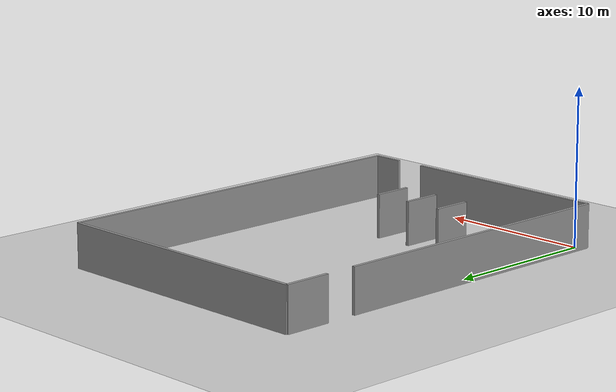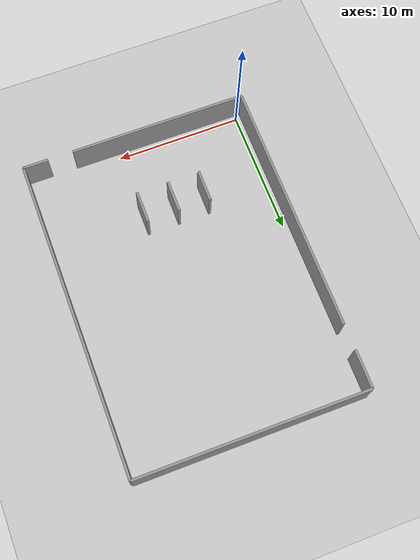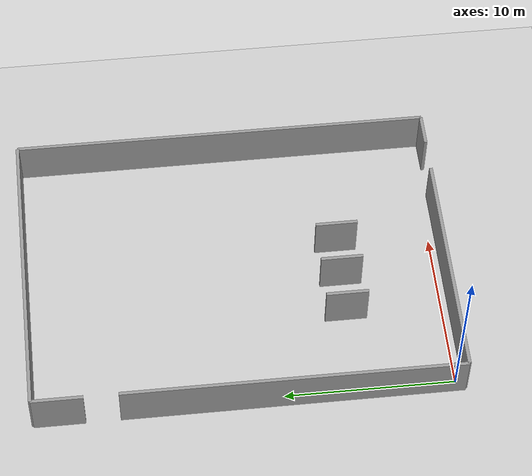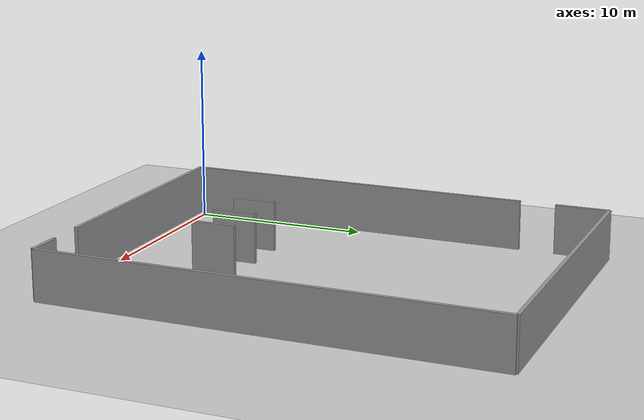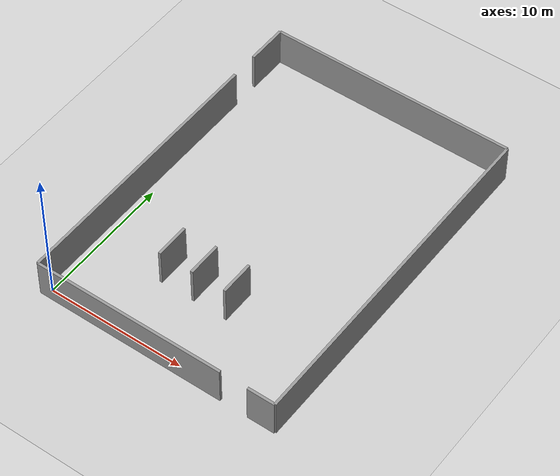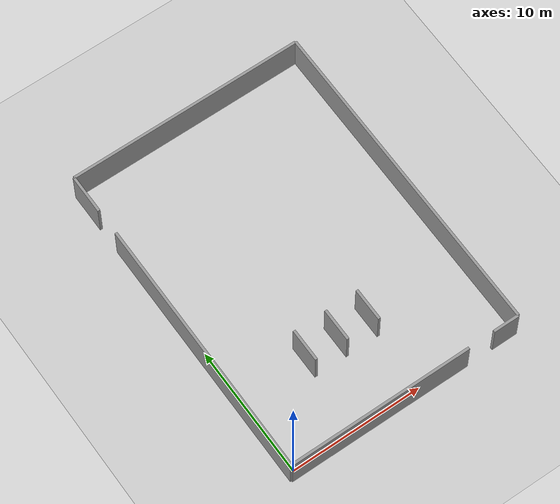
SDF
<?xml version="1.0" ?>

    <!-- this file is auto generated using pedsim_gazebo_plugin pkg -->
    <sdf version="1.5">
      <world name="default">

      <!-- Ground Plane -->

      <include>
        <uri>model://ground_plane</uri>
      </include>

      <include>
        <uri>model://sun</uri>
      </include>

     <model name='grey_wall_1'>
      <static>1</static>
      <link name='link'>

	  <pose frame=''>6.5 -0.5  1.4 0 0 0.0</pose>

        <collision name='collision'>
          <geometry>
            <box>

	     <size> 14.0 .2  2.8 </size>

      	   </box>
          </geometry>
          <max_contacts>10</max_contacts>
          <surface>
            <contact>
              <ode/>
            </contact>
            <bounce/>
            <friction>
              <torsional>
                <ode/>
              </torsional>
              <ode/>
            </friction>
          </surface>
        </collision>
        <visual name='visual'>
          <cast_shadows>0</cast_shadows>
          <geometry>
            <box>

	     <size> 14.0 .2  2.8 </size>

      	   </box>
       </geometry>
          <material>
            <script>
              <uri>model://grey_wall/materials/scripts</uri>
              <uri>model://grey_wall/materials/textures</uri>
              <name>vrc/grey_wall</name>
            </script>
          </material>
        </visual>
        <self_collide>0</self_collide>
        <enable_wind>0</enable_wind>
        <kinematic>0</kinematic>
      </link>
    </model>

     <model name='grey_wall_2'>
      <static>1</static>
      <link name='link'>

	  <pose frame=''>16.5 -0.5  1.4 0 0 0.0</pose>

        <collision name='collision'>
          <geometry>
            <box>

	     <size> 2.0 .2  2.8 </size>

      	   </box>
          </geometry>
          <max_contacts>10</max_contacts>
          <surface>
            <contact>
              <ode/>
            </contact>
            <bounce/>
            <friction>
              <torsional>
                <ode/>
              </torsional>
              <ode/>
            </friction>
          </surface>
        </collision>
        <visual name='visual'>
          <cast_shadows>0</cast_shadows>
          <geometry>
            <box>

	     <size> 2.0 .2  2.8 </size>

      	   </box>
       </geometry>
          <material>
            <script>
              <uri>model://grey_wall/materials/scripts</uri>
              <uri>model://grey_wall/materials/textures</uri>
              <name>vrc/grey_wall</name>
            </script>
          </material>
        </visual>
        <self_collide>0</self_collide>
        <enable_wind>0</enable_wind>
        <kinematic>0</kinematic>
      </link>
    </model>

     <model name='grey_wall_3'>
      <static>1</static>
      <link name='link'>

	  <pose frame=''>-0.5 9.5  1.4 0 0 1.57</pose>

        <collision name='collision'>
          <geometry>
            <box>

	     <size> 20.0 .2  2.8 </size>

      	   </box>
          </geometry>
          <max_contacts>10</max_contacts>
          <surface>
            <contact>
              <ode/>
            </contact>
            <bounce/>
            <friction>
              <torsional>
                <ode/>
              </torsional>
              <ode/>
            </friction>
          </surface>
        </collision>
        <visual name='visual'>
          <cast_shadows>0</cast_shadows>
          <geometry>
            <box>

	     <size> 20.0 .2  2.8 </size>

      	   </box>
       </geometry>
          <material>
            <script>
              <uri>model://grey_wall/materials/scripts</uri>
              <uri>model://grey_wall/materials/textures</uri>
              <name>vrc/grey_wall</name>
            </script>
          </material>
        </visual>
        <self_collide>0</self_collide>
        <enable_wind>0</enable_wind>
        <kinematic>0</kinematic>
      </link>
    </model>

     <model name='grey_wall_4'>
      <static>1</static>
      <link name='link'>

	  <pose frame=''>-0.5 23.0  1.4 0 0 1.57</pose>

        <collision name='collision'>
          <geometry>
            <box>

	     <size> 3.0 .2  2.8 </size>

      	   </box>
          </geometry>
          <max_contacts>10</max_contacts>
          <surface>
            <contact>
              <ode/>
            </contact>
            <bounce/>
            <friction>
              <torsional>
                <ode/>
              </torsional>
              <ode/>
            </friction>
          </surface>
        </collision>
        <visual name='visual'>
          <cast_shadows>0</cast_shadows>
          <geometry>
            <box>

	     <size> 3.0 .2  2.8 </size>

      	   </box>
       </geometry>
          <material>
            <script>
              <uri>model://grey_wall/materials/scripts</uri>
              <uri>model://grey_wall/materials/textures</uri>
              <name>vrc/grey_wall</name>
            </script>
          </material>
        </visual>
        <self_collide>0</self_collide>
        <enable_wind>0</enable_wind>
        <kinematic>0</kinematic>
      </link>
    </model>

     <model name='grey_wall_5'>
      <static>1</static>
      <link name='link'>

	  <pose frame=''>8.5 24.5  1.4 0 0 0.0</pose>

        <collision name='collision'>
          <geometry>
            <box>

	     <size> 18.0 .2  2.8 </size>

      	   </box>
          </geometry>
          <max_contacts>10</max_contacts>
          <surface>
            <contact>
              <ode/>
            </contact>
            <bounce/>
            <friction>
              <torsional>
                <ode/>
              </torsional>
              <ode/>
            </friction>
          </surface>
        </collision>
        <visual name='visual'>
          <cast_shadows>0</cast_shadows>
          <geometry>
            <box>

	     <size> 18.0 .2  2.8 </size>

      	   </box>
       </geometry>
          <material>
            <script>
              <uri>model://grey_wall/materials/scripts</uri>
              <uri>model://grey_wall/materials/textures</uri>
              <name>vrc/grey_wall</name>
            </script>
          </material>
        </visual>
        <self_collide>0</self_collide>
        <enable_wind>0</enable_wind>
        <kinematic>0</kinematic>
      </link>
    </model>

     <model name='grey_wall_6'>
      <static>1</static>
      <link name='link'>

	  <pose frame=''>17.5 12.0  1.4 0 0 1.57</pose>

        <collision name='collision'>
          <geometry>
            <box>

	     <size> 25.0 .2  2.8 </size>

      	   </box>
          </geometry>
          <max_contacts>10</max_contacts>
          <surface>
            <contact>
              <ode/>
            </contact>
            <bounce/>
            <friction>
              <torsional>
                <ode/>
              </torsional>
              <ode/>
            </friction>
          </surface>
        </collision>
        <visual name='visual'>
          <cast_shadows>0</cast_shadows>
          <geometry>
            <box>

	     <size> 25.0 .2  2.8 </size>

      	   </box>
       </geometry>
          <material>
            <script>
              <uri>model://grey_wall/materials/scripts</uri>
              <uri>model://grey_wall/materials/textures</uri>
              <name>vrc/grey_wall</name>
            </script>
          </material>
        </visual>
        <self_collide>0</self_collide>
        <enable_wind>0</enable_wind>
        <kinematic>0</kinematic>
      </link>
    </model>

     <model name='grey_wall_7'>
      <static>1</static>
      <link name='link'>

	  <pose frame=''>5.0 5.75  1.4 0 0 1.57</pose>

        <collision name='collision'>
          <geometry>
            <box>

	     <size> 2.5 .2  2.8 </size>

      	   </box>
          </geometry>
          <max_contacts>10</max_contacts>
          <surface>
            <contact>
              <ode/>
            </contact>
            <bounce/>
            <friction>
              <torsional>
                <ode/>
              </torsional>
              <ode/>
            </friction>
          </surface>
        </collision>
        <visual name='visual'>
          <cast_shadows>0</cast_shadows>
          <geometry>
            <box>

	     <size> 2.5 .2  2.8 </size>

      	   </box>
       </geometry>
          <material>
            <script>
              <uri>model://grey_wall/materials/scripts</uri>
              <uri>model://grey_wall/materials/textures</uri>
              <name>vrc/grey_wall</name>
            </script>
          </material>
        </visual>
        <self_collide>0</self_collide>
        <enable_wind>0</enable_wind>
        <kinematic>0</kinematic>
      </link>
    </model>

     <model name='grey_wall_8'>
      <static>1</static>
      <link name='link'>

	  <pose frame=''>7.5 5.75  1.4 0 0 1.57</pose>

        <collision name='collision'>
          <geometry>
            <box>

	     <size> 2.5 .2  2.8 </size>

      	   </box>
          </geometry>
          <max_contacts>10</max_contacts>
          <surface>
            <contact>
              <ode/>
            </contact>
            <bounce/>
            <friction>
              <torsional>
                <ode/>
              </torsional>
              <ode/>
            </friction>
          </surface>
        </collision>
        <visual name='visual'>
          <cast_shadows>0</cast_shadows>
          <geometry>
            <box>

	     <size> 2.5 .2  2.8 </size>

      	   </box>
       </geometry>
          <material>
            <script>
              <uri>model://grey_wall/materials/scripts</uri>
              <uri>model://grey_wall/materials/textures</uri>
              <name>vrc/grey_wall</name>
            </script>
          </material>
        </visual>
        <self_collide>0</self_collide>
        <enable_wind>0</enable_wind>
        <kinematic>0</kinematic>
      </link>
    </model>

     <model name='grey_wall_9'>
      <static>1</static>
      <link name='link'>

	  <pose frame=''>10.0 5.75  1.4 0 0 1.57</pose>

        <collision name='collision'>
          <geometry>
            <box>

	     <size> 2.5 .2  2.8 </size>

      	   </box>
          </geometry>
          <max_contacts>10</max_contacts>
          <surface>
            <contact>
              <ode/>
            </contact>
            <bounce/>
            <friction>
              <torsional>
                <ode/>
              </torsional>
              <ode/>
            </friction>
          </surface>
        </collision>
        <visual name='visual'>
          <cast_shadows>0</cast_shadows>
          <geometry>
            <box>

	     <size> 2.5 .2  2.8 </size>

      	   </box>
       </geometry>
          <material>
            <script>
              <uri>model://grey_wall/materials/scripts</uri>
              <uri>model://grey_wall/materials/textures</uri>
              <name>vrc/grey_wall</name>
            </script>
          </material>
        </visual>
        <self_collide>0</self_collide>
        <enable_wind>0</enable_wind>
        <kinematic>0</kinematic>
      </link>
    </model>

            <plugin name="ActorPosesPlugin" filename="libActorPosesPlugin.so">
        </plugin>

      </world>
    </sdf>
